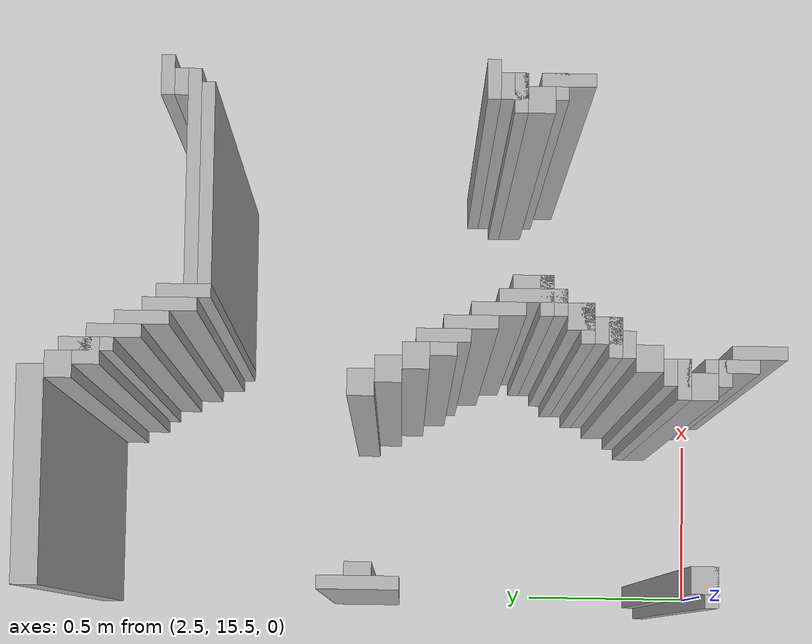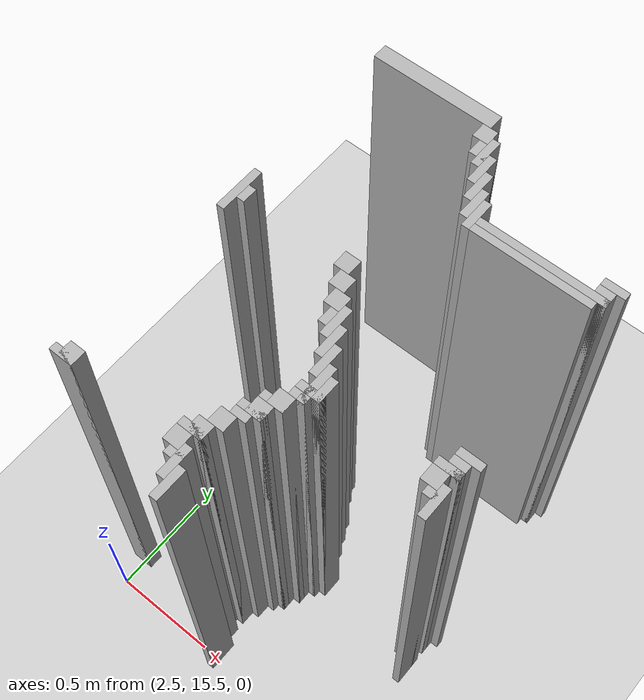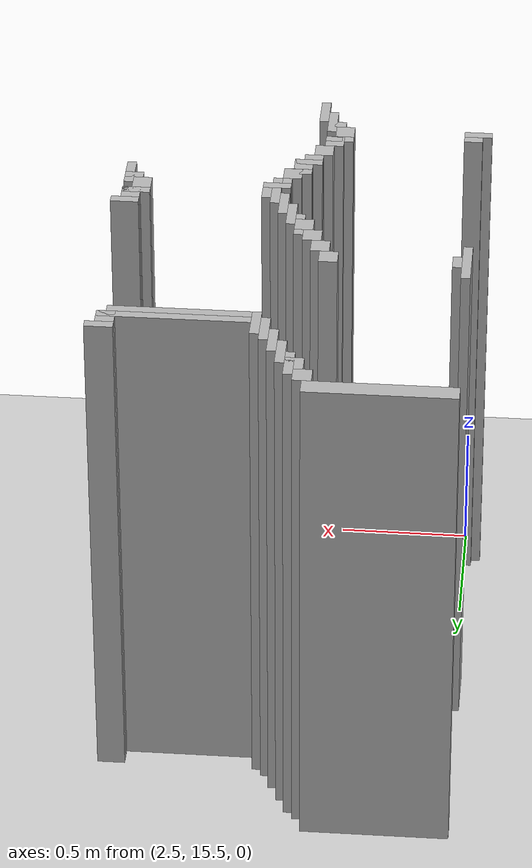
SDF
<sdf version="1.6">
 <world name="slam_world">
  <model name="ground_plane">
   <static>true</static>
   <link name="link">
    <collision name="collision">
     <geometry><plane><normal>0 0 1</normal><size>100 100</size></plane></geometry>
    </collision>
    <visual name="visual">
     <geometry><plane><normal>0 0 1</normal><size>100 100</size></plane></geometry>
     <material>
      <ambient>0.8 0.8 0.8 1</ambient>
      <diffuse>0.8 0.8 0.8 1</diffuse>
      <specular>0.8 0.8 0.8 1</specular>
     </material>
    </visual>
   </link>
  </model>
  <model name="wall_1">
   <static>true</static>
   <pose>2.7494199535962878 17.366589327146173 1.0 0 0 0</pose>
   <link name="link">
    <collision name="collision">
     <geometry><box><size>0.5568445475638051 0.06960556844547564 2.0</size></box></geometry>
    </collision>
    <visual name="visual">
     <geometry><box><size>0.5568445475638051 0.06960556844547564 2.0</size></box></geometry>
     <material><ambient>0.5 0.5 0.5 1</ambient><diffuse>0.7 0.7 0.7 1</diffuse></material>
    </visual>
   </link>
  </model>
  <model name="wall_14">
   <static>true</static>
   <pose>3.02784222737819 17.296983758700694 1.0 0 0 0</pose>
   <link name="link">
    <collision name="collision">
     <geometry><box><size>0.06960556844547564 0.06960556844547564 2.0</size></box></geometry>
    </collision>
    <visual name="visual">
     <geometry><box><size>0.06960556844547564 0.06960556844547564 2.0</size></box></geometry>
     <material><ambient>0.5 0.5 0.5 1</ambient><diffuse>0.7 0.7 0.7 1</diffuse></material>
    </visual>
   </link>
  </model>
  <model name="wall_34">
   <static>true</static>
   <pose>3.0800464037122968 17.22737819025522 1.0 0 0 0</pose>
   <link name="link">
    <collision name="collision">
     <geometry><box><size>0.03480278422273782 0.13921113689095127 2.0</size></box></geometry>
    </collision>
    <visual name="visual">
     <geometry><box><size>0.03480278422273782 0.13921113689095127 2.0</size></box></geometry>
     <material><ambient>0.5 0.5 0.5 1</ambient><diffuse>0.7 0.7 0.7 1</diffuse></material>
    </visual>
   </link>
  </model>
  <model name="wall_54">
   <static>true</static>
   <pose>3.062645011600928 17.22737819025522 1.0 0 0 0</pose>
   <link name="link">
    <collision name="collision">
     <geometry><box><size>0.06960556844547564 0.06960556844547564 2.0</size></box></geometry>
    </collision>
    <visual name="visual">
     <geometry><box><size>0.06960556844547564 0.06960556844547564 2.0</size></box></geometry>
     <material><ambient>0.5 0.5 0.5 1</ambient><diffuse>0.7 0.7 0.7 1</diffuse></material>
    </visual>
   </link>
  </model>
  <model name="wall_74">
   <static>true</static>
   <pose>3.1148491879350346 17.157772621809745 1.0 0 0 0</pose>
   <link name="link">
    <collision name="collision">
     <geometry><box><size>0.03480278422273782 0.13921113689095127 2.0</size></box></geometry>
    </collision>
    <visual name="visual">
     <geometry><box><size>0.03480278422273782 0.13921113689095127 2.0</size></box></geometry>
     <material><ambient>0.5 0.5 0.5 1</ambient><diffuse>0.7 0.7 0.7 1</diffuse></material>
    </visual>
   </link>
  </model>
  <model name="wall_104">
   <static>true</static>
   <pose>3.1496519721577725 17.08816705336427 1.0 0 0 0</pose>
   <link name="link">
    <collision name="collision">
     <geometry><box><size>0.03480278422273782 0.13921113689095127 2.0</size></box></geometry>
    </collision>
    <visual name="visual">
     <geometry><box><size>0.03480278422273782 0.13921113689095127 2.0</size></box></geometry>
     <material><ambient>0.5 0.5 0.5 1</ambient><diffuse>0.7 0.7 0.7 1</diffuse></material>
    </visual>
   </link>
  </model>
  <model name="wall_124">
   <static>true</static>
   <pose>3.1844547563805103 17.01856148491879 1.0 0 0 0</pose>
   <link name="link">
    <collision name="collision">
     <geometry><box><size>0.03480278422273782 0.13921113689095127 2.0</size></box></geometry>
    </collision>
    <visual name="visual">
     <geometry><box><size>0.03480278422273782 0.13921113689095127 2.0</size></box></geometry>
     <material><ambient>0.5 0.5 0.5 1</ambient><diffuse>0.7 0.7 0.7 1</diffuse></material>
    </visual>
   </link>
  </model>
  <model name="wall_144">
   <static>true</static>
   <pose>3.219257540603248 16.983758700696054 1.0 0 0 0</pose>
   <link name="link">
    <collision name="collision">
     <geometry><box><size>0.03480278422273782 0.13921113689095127 2.0</size></box></geometry>
    </collision>
    <visual name="visual">
     <geometry><box><size>0.03480278422273782 0.13921113689095127 2.0</size></box></geometry>
     <material><ambient>0.5 0.5 0.5 1</ambient><diffuse>0.7 0.7 0.7 1</diffuse></material>
    </visual>
   </link>
  </model>
  <model name="wall_145">
   <static>true</static>
   <pose>3.776102088167053 17.035962877030162 1.0 0 0 0</pose>
   <link name="link">
    <collision name="collision">
     <geometry><box><size>0.10440835266821345 0.03480278422273782 2.0</size></box></geometry>
    </collision>
    <visual name="visual">
     <geometry><box><size>0.10440835266821345 0.03480278422273782 2.0</size></box></geometry>
     <material><ambient>0.5 0.5 0.5 1</ambient><diffuse>0.7 0.7 0.7 1</diffuse></material>
    </visual>
   </link>
  </model>
  <model name="wall_163">
   <static>true</static>
   <pose>3.7587006960556844 16.983758700696054 1.0 0 0 0</pose>
   <link name="link">
    <collision name="collision">
     <geometry><box><size>0.06960556844547564 0.06960556844547564 2.0</size></box></geometry>
    </collision>
    <visual name="visual">
     <geometry><box><size>0.06960556844547564 0.06960556844547564 2.0</size></box></geometry>
     <material><ambient>0.5 0.5 0.5 1</ambient><diffuse>0.7 0.7 0.7 1</diffuse></material>
    </visual>
   </link>
  </model>
  <model name="wall_173">
   <static>true</static>
   <pose>3.51508120649652 16.966357308584687 1.0 0 0 0</pose>
   <link name="link">
    <collision name="collision">
     <geometry><box><size>0.5568445475638051 0.03480278422273782 2.0</size></box></geometry>
    </collision>
    <visual name="visual">
     <geometry><box><size>0.5568445475638051 0.03480278422273782 2.0</size></box></geometry>
     <material><ambient>0.5 0.5 0.5 1</ambient><diffuse>0.7 0.7 0.7 1</diffuse></material>
    </visual>
   </link>
  </model>
  <model name="wall_184">
   <static>true</static>
   <pose>3.4976798143851506 16.93155452436195 1.0 0 0 0</pose>
   <link name="link">
    <collision name="collision">
     <geometry><box><size>0.5220417633410672 0.03480278422273782 2.0</size></box></geometry>
    </collision>
    <visual name="visual">
     <geometry><box><size>0.5220417633410672 0.03480278422273782 2.0</size></box></geometry>
     <material><ambient>0.5 0.5 0.5 1</ambient><diffuse>0.7 0.7 0.7 1</diffuse></material>
    </visual>
   </link>
  </model>
  <model name="wall_252">
   <static>true</static>
   <pose>2.488399071925754 16.531322505800464 1.0 0 0 0</pose>
   <link name="link">
    <collision name="collision">
     <geometry><box><size>0.03480278422273782 0.2088167053364269 2.0</size></box></geometry>
    </collision>
    <visual name="visual">
     <geometry><box><size>0.03480278422273782 0.2088167053364269 2.0</size></box></geometry>
     <material><ambient>0.5 0.5 0.5 1</ambient><diffuse>0.7 0.7 0.7 1</diffuse></material>
    </visual>
   </link>
  </model>
  <model name="wall_265">
   <static>true</static>
   <pose>2.523201856148492 16.531322505800464 1.0 0 0 0</pose>
   <link name="link">
    <collision name="collision">
     <geometry><box><size>0.03480278422273782 0.06960556844547564 2.0</size></box></geometry>
    </collision>
    <visual name="visual">
     <geometry><box><size>0.03480278422273782 0.06960556844547564 2.0</size></box></geometry>
     <material><ambient>0.5 0.5 0.5 1</ambient><diffuse>0.7 0.7 0.7 1</diffuse></material>
    </visual>
   </link>
  </model>
  <model name="wall_266">
   <static>true</static>
   <pose>2.9930394431554523 16.531322505800464 1.0 0 0 0</pose>
   <link name="link">
    <collision name="collision">
     <geometry><box><size>0.06960556844547564 0.06960556844547564 2.0</size></box></geometry>
    </collision>
    <visual name="visual">
     <geometry><box><size>0.06960556844547564 0.06960556844547564 2.0</size></box></geometry>
     <material><ambient>0.5 0.5 0.5 1</ambient><diffuse>0.7 0.7 0.7 1</diffuse></material>
    </visual>
   </link>
  </model>
  <model name="wall_283">
   <static>true</static>
   <pose>3.02784222737819 16.46171693735499 1.0 0 0 0</pose>
   <link name="link">
    <collision name="collision">
     <geometry><box><size>0.06960556844547564 0.06960556844547564 2.0</size></box></geometry>
    </collision>
    <visual name="visual">
     <geometry><box><size>0.06960556844547564 0.06960556844547564 2.0</size></box></geometry>
     <material><ambient>0.5 0.5 0.5 1</ambient><diffuse>0.7 0.7 0.7 1</diffuse></material>
    </visual>
   </link>
  </model>
  <model name="wall_306">
   <static>true</static>
   <pose>3.062645011600928 16.39211136890951 1.0 0 0 0</pose>
   <link name="link">
    <collision name="collision">
     <geometry><box><size>0.06960556844547564 0.06960556844547564 2.0</size></box></geometry>
    </collision>
    <visual name="visual">
     <geometry><box><size>0.06960556844547564 0.06960556844547564 2.0</size></box></geometry>
     <material><ambient>0.5 0.5 0.5 1</ambient><diffuse>0.7 0.7 0.7 1</diffuse></material>
    </visual>
   </link>
  </model>
  <model name="wall_320">
   <static>true</static>
   <pose>3.1148491879350346 16.322505800464036 1.0 0 0 0</pose>
   <link name="link">
    <collision name="collision">
     <geometry><box><size>0.03480278422273782 0.13921113689095127 2.0</size></box></geometry>
    </collision>
    <visual name="visual">
     <geometry><box><size>0.03480278422273782 0.13921113689095127 2.0</size></box></geometry>
     <material><ambient>0.5 0.5 0.5 1</ambient><diffuse>0.7 0.7 0.7 1</diffuse></material>
    </visual>
   </link>
  </model>
  <model name="wall_334">
   <static>true</static>
   <pose>3.097447795823666 16.322505800464036 1.0 0 0 0</pose>
   <link name="link">
    <collision name="collision">
     <geometry><box><size>0.06960556844547564 0.06960556844547564 2.0</size></box></geometry>
    </collision>
    <visual name="visual">
     <geometry><box><size>0.06960556844547564 0.06960556844547564 2.0</size></box></geometry>
     <material><ambient>0.5 0.5 0.5 1</ambient><diffuse>0.7 0.7 0.7 1</diffuse></material>
    </visual>
   </link>
  </model>
  <model name="wall_348">
   <static>true</static>
   <pose>3.1496519721577725 16.25290023201856 1.0 0 0 0</pose>
   <link name="link">
    <collision name="collision">
     <geometry><box><size>0.03480278422273782 0.13921113689095127 2.0</size></box></geometry>
    </collision>
    <visual name="visual">
     <geometry><box><size>0.03480278422273782 0.13921113689095127 2.0</size></box></geometry>
     <material><ambient>0.5 0.5 0.5 1</ambient><diffuse>0.7 0.7 0.7 1</diffuse></material>
    </visual>
   </link>
  </model>
  <model name="wall_370">
   <static>true</static>
   <pose>3.1844547563805103 16.183294663573086 1.0 0 0 0</pose>
   <link name="link">
    <collision name="collision">
     <geometry><box><size>0.03480278422273782 0.13921113689095127 2.0</size></box></geometry>
    </collision>
    <visual name="visual">
     <geometry><box><size>0.03480278422273782 0.13921113689095127 2.0</size></box></geometry>
     <material><ambient>0.5 0.5 0.5 1</ambient><diffuse>0.7 0.7 0.7 1</diffuse></material>
    </visual>
   </link>
  </model>
  <model name="wall_383">
   <static>true</static>
   <pose>3.776102088167053 16.200696055684453 1.0 0 0 0</pose>
   <link name="link">
    <collision name="collision">
     <geometry><box><size>0.10440835266821345 0.03480278422273782 2.0</size></box></geometry>
    </collision>
    <visual name="visual">
     <geometry><box><size>0.10440835266821345 0.03480278422273782 2.0</size></box></geometry>
     <material><ambient>0.5 0.5 0.5 1</ambient><diffuse>0.7 0.7 0.7 1</diffuse></material>
    </visual>
   </link>
  </model>
  <model name="wall_392">
   <static>true</static>
   <pose>3.219257540603248 16.09628770301624 1.0 0 0 0</pose>
   <link name="link">
    <collision name="collision">
     <geometry><box><size>0.03480278422273782 0.17401392111368907 2.0</size></box></geometry>
    </collision>
    <visual name="visual">
     <geometry><box><size>0.03480278422273782 0.17401392111368907 2.0</size></box></geometry>
     <material><ambient>0.5 0.5 0.5 1</ambient><diffuse>0.7 0.7 0.7 1</diffuse></material>
    </visual>
   </link>
  </model>
  <model name="wall_393">
   <static>true</static>
   <pose>3.7587006960556844 16.14849187935035 1.0 0 0 0</pose>
   <link name="link">
    <collision name="collision">
     <geometry><box><size>0.06960556844547564 0.06960556844547564 2.0</size></box></geometry>
    </collision>
    <visual name="visual">
     <geometry><box><size>0.06960556844547564 0.06960556844547564 2.0</size></box></geometry>
     <material><ambient>0.5 0.5 0.5 1</ambient><diffuse>0.7 0.7 0.7 1</diffuse></material>
    </visual>
   </link>
  </model>
  <model name="wall_406">
   <static>true</static>
   <pose>3.254060324825986 16.09628770301624 1.0 0 0 0</pose>
   <link name="link">
    <collision name="collision">
     <geometry><box><size>0.03480278422273782 0.10440835266821345 2.0</size></box></geometry>
    </collision>
    <visual name="visual">
     <geometry><box><size>0.03480278422273782 0.10440835266821345 2.0</size></box></geometry>
     <material><ambient>0.5 0.5 0.5 1</ambient><diffuse>0.7 0.7 0.7 1</diffuse></material>
    </visual>
   </link>
  </model>
  <model name="wall_407">
   <static>true</static>
   <pose>3.741299303944315 16.13109048723898 1.0 0 0 0</pose>
   <link name="link">
    <collision name="collision">
     <geometry><box><size>0.10440835266821345 0.03480278422273782 2.0</size></box></geometry>
    </collision>
    <visual name="visual">
     <geometry><box><size>0.10440835266821345 0.03480278422273782 2.0</size></box></geometry>
     <material><ambient>0.5 0.5 0.5 1</ambient><diffuse>0.7 0.7 0.7 1</diffuse></material>
    </visual>
   </link>
  </model>
  <model name="wall_419">
   <static>true</static>
   <pose>3.7238979118329465 16.07888631090487 1.0 0 0 0</pose>
   <link name="link">
    <collision name="collision">
     <geometry><box><size>0.06960556844547564 0.06960556844547564 2.0</size></box></geometry>
    </collision>
    <visual name="visual">
     <geometry><box><size>0.06960556844547564 0.06960556844547564 2.0</size></box></geometry>
     <material><ambient>0.5 0.5 0.5 1</ambient><diffuse>0.7 0.7 0.7 1</diffuse></material>
    </visual>
   </link>
  </model>
  <model name="wall_431">
   <static>true</static>
   <pose>3.219257540603248 16.061484918793504 1.0 0 0 0</pose>
   <link name="link">
    <collision name="collision">
     <geometry><box><size>0.10440835266821345 0.03480278422273782 2.0</size></box></geometry>
    </collision>
    <visual name="visual">
     <geometry><box><size>0.10440835266821345 0.03480278422273782 2.0</size></box></geometry>
     <material><ambient>0.5 0.5 0.5 1</ambient><diffuse>0.7 0.7 0.7 1</diffuse></material>
    </visual>
   </link>
  </model>
  <model name="wall_432">
   <static>true</static>
   <pose>3.776102088167053 16.009280742459396 1.0 0 0 0</pose>
   <link name="link">
    <collision name="collision">
     <geometry><box><size>0.03480278422273782 0.13921113689095127 2.0</size></box></geometry>
    </collision>
    <visual name="visual">
     <geometry><box><size>0.03480278422273782 0.13921113689095127 2.0</size></box></geometry>
     <material><ambient>0.5 0.5 0.5 1</ambient><diffuse>0.7 0.7 0.7 1</diffuse></material>
    </visual>
   </link>
  </model>
  <model name="wall_445">
   <static>true</static>
   <pose>3.201856148491879 16.026682134570766 1.0 0 0 0</pose>
   <link name="link">
    <collision name="collision">
     <geometry><box><size>0.06960556844547564 0.03480278422273782 2.0</size></box></geometry>
    </collision>
    <visual name="visual">
     <geometry><box><size>0.06960556844547564 0.03480278422273782 2.0</size></box></geometry>
     <material><ambient>0.5 0.5 0.5 1</ambient><diffuse>0.7 0.7 0.7 1</diffuse></material>
    </visual>
   </link>
  </model>
  <model name="wall_446">
   <static>true</static>
   <pose>3.7587006960556844 16.026682134570766 1.0 0 0 0</pose>
   <link name="link">
    <collision name="collision">
     <geometry><box><size>0.06960556844547564 0.03480278422273782 2.0</size></box></geometry>
    </collision>
    <visual name="visual">
     <geometry><box><size>0.06960556844547564 0.03480278422273782 2.0</size></box></geometry>
     <material><ambient>0.5 0.5 0.5 1</ambient><diffuse>0.7 0.7 0.7 1</diffuse></material>
    </visual>
   </link>
  </model>
  <model name="wall_459">
   <static>true</static>
   <pose>3.167053364269141 15.974477958236658 1.0 0 0 0</pose>
   <link name="link">
    <collision name="collision">
     <geometry><box><size>0.06960556844547564 0.06960556844547564 2.0</size></box></geometry>
    </collision>
    <visual name="visual">
     <geometry><box><size>0.06960556844547564 0.06960556844547564 2.0</size></box></geometry>
     <material><ambient>0.5 0.5 0.5 1</ambient><diffuse>0.7 0.7 0.7 1</diffuse></material>
    </visual>
   </link>
  </model>
  <model name="wall_473">
   <static>true</static>
   <pose>3.1496519721577725 15.95707656612529 1.0 0 0 0</pose>
   <link name="link">
    <collision name="collision">
     <geometry><box><size>0.10440835266821345 0.03480278422273782 2.0</size></box></geometry>
    </collision>
    <visual name="visual">
     <geometry><box><size>0.10440835266821345 0.03480278422273782 2.0</size></box></geometry>
     <material><ambient>0.5 0.5 0.5 1</ambient><diffuse>0.7 0.7 0.7 1</diffuse></material>
    </visual>
   </link>
  </model>
  <model name="wall_486">
   <static>true</static>
   <pose>3.1322505800464038 15.904872389791183 1.0 0 0 0</pose>
   <link name="link">
    <collision name="collision">
     <geometry><box><size>0.06960556844547564 0.06960556844547564 2.0</size></box></geometry>
    </collision>
    <visual name="visual">
     <geometry><box><size>0.06960556844547564 0.06960556844547564 2.0</size></box></geometry>
     <material><ambient>0.5 0.5 0.5 1</ambient><diffuse>0.7 0.7 0.7 1</diffuse></material>
    </visual>
   </link>
  </model>
  <model name="wall_497">
   <static>true</static>
   <pose>3.1148491879350346 15.887470997679813 1.0 0 0 0</pose>
   <link name="link">
    <collision name="collision">
     <geometry><box><size>0.10440835266821345 0.03480278422273782 2.0</size></box></geometry>
    </collision>
    <visual name="visual">
     <geometry><box><size>0.10440835266821345 0.03480278422273782 2.0</size></box></geometry>
     <material><ambient>0.5 0.5 0.5 1</ambient><diffuse>0.7 0.7 0.7 1</diffuse></material>
    </visual>
   </link>
  </model>
  <model name="wall_510">
   <static>true</static>
   <pose>3.097447795823666 15.852668213457076 1.0 0 0 0</pose>
   <link name="link">
    <collision name="collision">
     <geometry><box><size>0.06960556844547564 0.03480278422273782 2.0</size></box></geometry>
    </collision>
    <visual name="visual">
     <geometry><box><size>0.06960556844547564 0.03480278422273782 2.0</size></box></geometry>
     <material><ambient>0.5 0.5 0.5 1</ambient><diffuse>0.7 0.7 0.7 1</diffuse></material>
    </visual>
   </link>
  </model>
  <model name="wall_519">
   <static>true</static>
   <pose>3.062645011600928 15.80046403712297 1.0 0 0 0</pose>
   <link name="link">
    <collision name="collision">
     <geometry><box><size>0.06960556844547564 0.06960556844547564 2.0</size></box></geometry>
    </collision>
    <visual name="visual">
     <geometry><box><size>0.06960556844547564 0.06960556844547564 2.0</size></box></geometry>
     <material><ambient>0.5 0.5 0.5 1</ambient><diffuse>0.7 0.7 0.7 1</diffuse></material>
    </visual>
   </link>
  </model>
  <model name="wall_533">
   <static>true</static>
   <pose>3.02784222737819 15.730858468677493 1.0 0 0 0</pose>
   <link name="link">
    <collision name="collision">
     <geometry><box><size>0.06960556844547564 0.06960556844547564 2.0</size></box></geometry>
    </collision>
    <visual name="visual">
     <geometry><box><size>0.06960556844547564 0.06960556844547564 2.0</size></box></geometry>
     <material><ambient>0.5 0.5 0.5 1</ambient><diffuse>0.7 0.7 0.7 1</diffuse></material>
    </visual>
   </link>
  </model>
  <model name="wall_546">
   <static>true</static>
   <pose>3.010440835266821 15.713457076566124 1.0 0 0 0</pose>
   <link name="link">
    <collision name="collision">
     <geometry><box><size>0.10440835266821345 0.03480278422273782 2.0</size></box></geometry>
    </collision>
    <visual name="visual">
     <geometry><box><size>0.10440835266821345 0.03480278422273782 2.0</size></box></geometry>
     <material><ambient>0.5 0.5 0.5 1</ambient><diffuse>0.7 0.7 0.7 1</diffuse></material>
    </visual>
   </link>
  </model>
  <model name="wall_558">
   <static>true</static>
   <pose>2.5058004640371228 15.661252900232018 1.0 0 0 0</pose>
   <link name="link">
    <collision name="collision">
     <geometry><box><size>0.06960556844547564 0.06960556844547564 2.0</size></box></geometry>
    </collision>
    <visual name="visual">
     <geometry><box><size>0.06960556844547564 0.06960556844547564 2.0</size></box></geometry>
     <material><ambient>0.5 0.5 0.5 1</ambient><diffuse>0.7 0.7 0.7 1</diffuse></material>
    </visual>
   </link>
  </model>
  <model name="wall_559">
   <static>true</static>
   <pose>2.9930394431554523 15.661252900232018 1.0 0 0 0</pose>
   <link name="link">
    <collision name="collision">
     <geometry><box><size>0.06960556844547564 0.06960556844547564 2.0</size></box></geometry>
    </collision>
    <visual name="visual">
     <geometry><box><size>0.06960556844547564 0.06960556844547564 2.0</size></box></geometry>
     <material><ambient>0.5 0.5 0.5 1</ambient><diffuse>0.7 0.7 0.7 1</diffuse></material>
    </visual>
   </link>
  </model>
  <model name="wall_572">
   <static>true</static>
   <pose>2.488399071925754 15.64385150812065 1.0 0 0 0</pose>
   <link name="link">
    <collision name="collision">
     <geometry><box><size>0.10440835266821345 0.03480278422273782 2.0</size></box></geometry>
    </collision>
    <visual name="visual">
     <geometry><box><size>0.10440835266821345 0.03480278422273782 2.0</size></box></geometry>
     <material><ambient>0.5 0.5 0.5 1</ambient><diffuse>0.7 0.7 0.7 1</diffuse></material>
    </visual>
   </link>
  </model>
  <model name="wall_573">
   <static>true</static>
   <pose>3.045243619489559 15.591647331786543 1.0 0 0 0</pose>
   <link name="link">
    <collision name="collision">
     <geometry><box><size>0.03480278422273782 0.13921113689095127 2.0</size></box></geometry>
    </collision>
    <visual name="visual">
     <geometry><box><size>0.03480278422273782 0.13921113689095127 2.0</size></box></geometry>
     <material><ambient>0.5 0.5 0.5 1</ambient><diffuse>0.7 0.7 0.7 1</diffuse></material>
    </visual>
   </link>
  </model>
  <model name="wall_593">
   <static>true</static>
   <pose>3.02784222737819 15.609048723897912 1.0 0 0 0</pose>
   <link name="link">
    <collision name="collision">
     <geometry><box><size>0.06960556844547564 0.03480278422273782 2.0</size></box></geometry>
    </collision>
    <visual name="visual">
     <geometry><box><size>0.06960556844547564 0.03480278422273782 2.0</size></box></geometry>
     <material><ambient>0.5 0.5 0.5 1</ambient><diffuse>0.7 0.7 0.7 1</diffuse></material>
    </visual>
   </link>
  </model>
  <model name="wall_610">
   <static>true</static>
   <pose>3.0800464037122968 15.522041763341067 1.0 0 0 0</pose>
   <link name="link">
    <collision name="collision">
     <geometry><box><size>0.03480278422273782 0.13921113689095127 2.0</size></box></geometry>
    </collision>
    <visual name="visual">
     <geometry><box><size>0.03480278422273782 0.13921113689095127 2.0</size></box></geometry>
     <material><ambient>0.5 0.5 0.5 1</ambient><diffuse>0.7 0.7 0.7 1</diffuse></material>
    </visual>
   </link>
  </model>
 </world>
</sdf>
